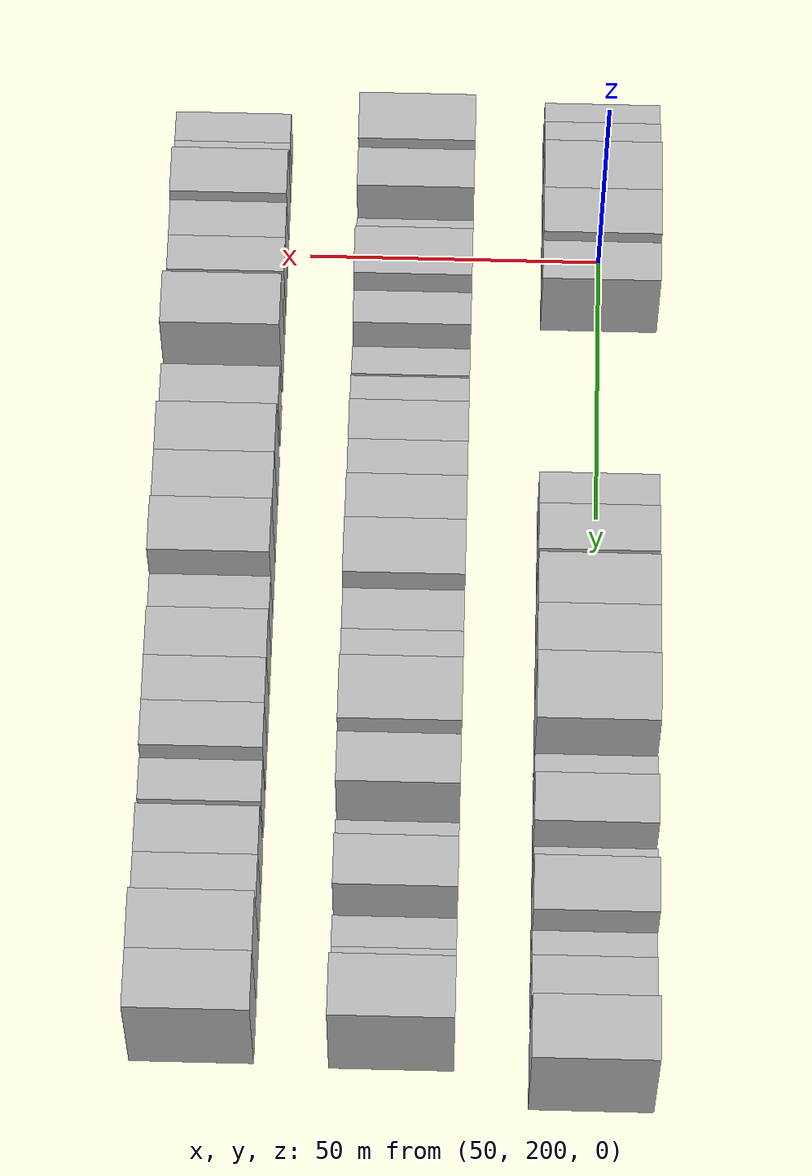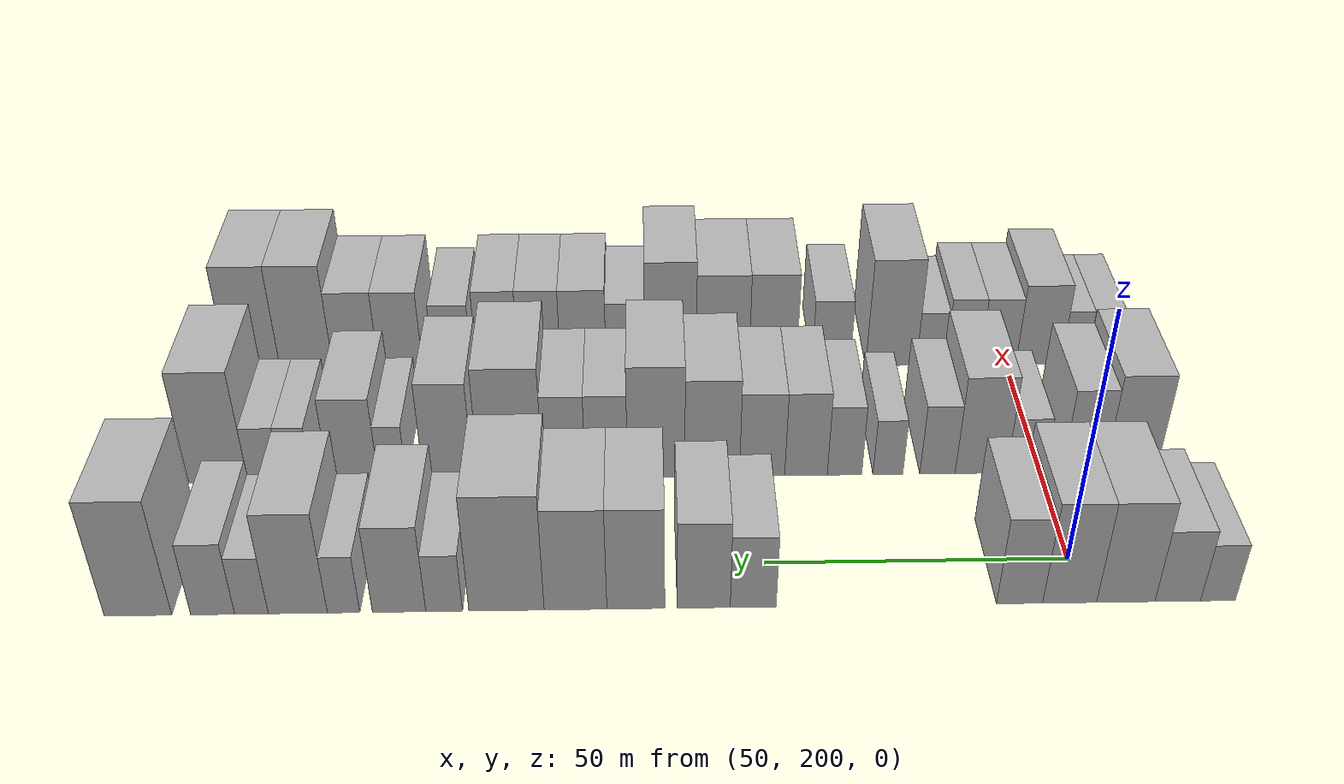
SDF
<sdf version="1.6">
 <world name="default">
  <model name="building_58">
   <static>1</static>
   <pose>50.0000 177.9480 0 0.000000 0.000000 0.000000</pose>
   <link name="link">
    <pose>0 0 6.00 0 0 0</pose>
    <collision name="collision"><geometry><box><size>20.0000 5.5900 12.0000</size></box></geometry></collision>
    <visual name="visual">
     <cast_shadows>0</cast_shadows>
     <geometry><box><size>20.0000 5.5900 12.0000</size></box></geometry>
     <material>
      <script>
       <uri>model://HANNAS_wall/materials/scripts</uri>
       <uri>model://HANNAS_wall/materials/textures</uri>
       <name>vrc/HANNAS_wall</name>
      </script>
     </material>
    </visual>
   </link>
  </model>
  <model name="building_59">
   <static>1</static>
   <pose>50.0000 184.4182 0 0.000000 0.000000 0.000000</pose>
   <link name="link">
    <pose>0 0 7.50 0 0 0</pose>
    <collision name="collision"><geometry><box><size>20.0000 7.3504 15.0000</size></box></geometry></collision>
    <visual name="visual">
     <cast_shadows>0</cast_shadows>
     <geometry><box><size>20.0000 7.3504 15.0000</size></box></geometry>
     <material>
      <script>
       <uri>model://HANNAS_wall/materials/scripts</uri>
       <uri>model://HANNAS_wall/materials/textures</uri>
       <name>vrc/HANNAS_wall</name>
      </script>
     </material>
    </visual>
   </link>
  </model>
  <model name="building_60">
   <static>1</static>
   <pose>50.0000 192.7913 0 0.000000 0.000000 0.000000</pose>
   <link name="link">
    <pose>0 0 10.50 0 0 0</pose>
    <collision name="collision"><geometry><box><size>20.0000 9.3958 21.0000</size></box></geometry></collision>
    <visual name="visual">
     <cast_shadows>0</cast_shadows>
     <geometry><box><size>20.0000 9.3958 21.0000</size></box></geometry>
     <material>
      <script>
       <uri>model://HANNAS_wall/materials/scripts</uri>
       <uri>model://HANNAS_wall/materials/textures</uri>
       <name>vrc/HANNAS_wall</name>
      </script>
     </material>
    </visual>
   </link>
  </model>
  <model name="building_61">
   <static>1</static>
   <pose>50.0000 201.8314 0 0.000000 0.000000 0.000000</pose>
   <link name="link">
    <pose>0 0 10.50 0 0 0</pose>
    <collision name="collision"><geometry><box><size>20.0000 8.6845 21.0000</size></box></geometry></collision>
    <visual name="visual">
     <cast_shadows>0</cast_shadows>
     <geometry><box><size>20.0000 8.6845 21.0000</size></box></geometry>
     <material>
      <script>
       <uri>model://HANNAS_wall/materials/scripts</uri>
       <uri>model://HANNAS_wall/materials/textures</uri>
       <name>vrc/HANNAS_wall</name>
      </script>
     </material>
    </visual>
   </link>
  </model>
  <model name="building_62">
   <static>1</static>
   <pose>50.0000 209.8744 0 0.000000 0.000000 0.000000</pose>
   <link name="link">
    <pose>0 0 9.00 0 0 0</pose>
    <collision name="collision"><geometry><box><size>20.0000 7.4015 18.0000</size></box></geometry></collision>
    <visual name="visual">
     <cast_shadows>0</cast_shadows>
     <geometry><box><size>20.0000 7.4015 18.0000</size></box></geometry>
     <material>
      <script>
       <uri>model://HANNAS_wall/materials/scripts</uri>
       <uri>model://HANNAS_wall/materials/textures</uri>
       <name>vrc/HANNAS_wall</name>
      </script>
     </material>
    </visual>
   </link>
  </model>
  <model name="building_63">
   <static>1</static>
   <pose>50.0000 252.5464 0 0.000000 0.000000 0.000000</pose>
   <link name="link">
    <pose>0 0 7.50 0 0 0</pose>
    <collision name="collision"><geometry><box><size>20.0000 7.3142 15.0000</size></box></geometry></collision>
    <visual name="visual">
     <cast_shadows>0</cast_shadows>
     <geometry><box><size>20.0000 7.3142 15.0000</size></box></geometry>
     <material>
      <script>
       <uri>model://HANNAS_wall/materials/scripts</uri>
       <uri>model://HANNAS_wall/materials/textures</uri>
       <name>vrc/HANNAS_wall</name>
      </script>
     </material>
    </visual>
   </link>
  </model>
  <model name="building_64">
   <static>1</static>
   <pose>50.0000 260.4299 0 0.000000 0.000000 0.000000</pose>
   <link name="link">
    <pose>0 0 9.00 0 0 0</pose>
    <collision name="collision"><geometry><box><size>20.0000 8.4530 18.0000</size></box></geometry></collision>
    <visual name="visual">
     <cast_shadows>0</cast_shadows>
     <geometry><box><size>20.0000 8.4530 18.0000</size></box></geometry>
     <material>
      <script>
       <uri>model://HANNAS_wall/materials/scripts</uri>
       <uri>model://HANNAS_wall/materials/textures</uri>
       <name>vrc/HANNAS_wall</name>
      </script>
     </material>
    </visual>
   </link>
  </model>
  <model name="building_65">
   <static>1</static>
   <pose>50.0000 271.2693 0 0.000000 0.000000 0.000000</pose>
   <link name="link">
    <pose>0 0 10.50 0 0 0</pose>
    <collision name="collision"><geometry><box><size>20.0000 9.2257 21.0000</size></box></geometry></collision>
    <visual name="visual">
     <cast_shadows>0</cast_shadows>
     <geometry><box><size>20.0000 9.2257 21.0000</size></box></geometry>
     <material>
      <script>
       <uri>model://HANNAS_wall/materials/scripts</uri>
       <uri>model://HANNAS_wall/materials/textures</uri>
       <name>vrc/HANNAS_wall</name>
      </script>
     </material>
    </visual>
   </link>
  </model>
  <model name="building_66">
   <static>1</static>
   <pose>50.0000 280.8760 0 0.000000 0.000000 0.000000</pose>
   <link name="link">
    <pose>0 0 10.50 0 0 0</pose>
    <collision name="collision"><geometry><box><size>20.0000 9.9877 21.0000</size></box></geometry></collision>
    <visual name="visual">
     <cast_shadows>0</cast_shadows>
     <geometry><box><size>20.0000 9.9877 21.0000</size></box></geometry>
     <material>
      <script>
       <uri>model://HANNAS_wall/materials/scripts</uri>
       <uri>model://HANNAS_wall/materials/textures</uri>
       <name>vrc/HANNAS_wall</name>
      </script>
     </material>
    </visual>
   </link>
  </model>
  <model name="building_67">
   <static>1</static>
   <pose>50.0000 291.8581 0 0.000000 0.000000 0.000000</pose>
   <link name="link">
    <pose>0 0 12.00 0 0 0</pose>
    <collision name="collision"><geometry><box><size>20.0000 11.9766 24.0000</size></box></geometry></collision>
    <visual name="visual">
     <cast_shadows>0</cast_shadows>
     <geometry><box><size>20.0000 11.9766 24.0000</size></box></geometry>
     <material>
      <script>
       <uri>model://HANNAS_wall/materials/scripts</uri>
       <uri>model://HANNAS_wall/materials/textures</uri>
       <name>vrc/HANNAS_wall</name>
      </script>
     </material>
    </visual>
   </link>
  </model>
  <model name="building_68">
   <static>1</static>
   <pose>50.0000 301.7600 0 0.000000 0.000000 0.000000</pose>
   <link name="link">
    <pose>0 0 6.00 0 0 0</pose>
    <collision name="collision"><geometry><box><size>20.0000 5.8272 12.0000</size></box></geometry></collision>
    <visual name="visual">
     <cast_shadows>0</cast_shadows>
     <geometry><box><size>20.0000 5.8272 12.0000</size></box></geometry>
     <material>
      <script>
       <uri>model://HANNAS_wall/materials/scripts</uri>
       <uri>model://HANNAS_wall/materials/textures</uri>
       <name>vrc/HANNAS_wall</name>
      </script>
     </material>
    </visual>
   </link>
  </model>
  <model name="building_69">
   <static>1</static>
   <pose>50.0000 308.9085 0 0.000000 0.000000 0.000000</pose>
   <link name="link">
    <pose>0 0 9.00 0 0 0</pose>
    <collision name="collision"><geometry><box><size>20.0000 8.4697 18.0000</size></box></geometry></collision>
    <visual name="visual">
     <cast_shadows>0</cast_shadows>
     <geometry><box><size>20.0000 8.4697 18.0000</size></box></geometry>
     <material>
      <script>
       <uri>model://HANNAS_wall/materials/scripts</uri>
       <uri>model://HANNAS_wall/materials/textures</uri>
       <name>vrc/HANNAS_wall</name>
      </script>
     </material>
    </visual>
   </link>
  </model>
  <model name="building_70">
   <static>1</static>
   <pose>50.0000 317.7163 0 0.000000 0.000000 0.000000</pose>
   <link name="link">
    <pose>0 0 6.00 0 0 0</pose>
    <collision name="collision"><geometry><box><size>20.0000 5.1459 12.0000</size></box></geometry></collision>
    <visual name="visual">
     <cast_shadows>0</cast_shadows>
     <geometry><box><size>20.0000 5.1459 12.0000</size></box></geometry>
     <material>
      <script>
       <uri>model://HANNAS_wall/materials/scripts</uri>
       <uri>model://HANNAS_wall/materials/textures</uri>
       <name>vrc/HANNAS_wall</name>
      </script>
     </material>
    </visual>
   </link>
  </model>
  <model name="building_71">
   <static>1</static>
   <pose>50.0000 324.9714 0 0.000000 0.000000 0.000000</pose>
   <link name="link">
    <pose>0 0 10.50 0 0 0</pose>
    <collision name="collision"><geometry><box><size>20.0000 9.3643 21.0000</size></box></geometry></collision>
    <visual name="visual">
     <cast_shadows>0</cast_shadows>
     <geometry><box><size>20.0000 9.3643 21.0000</size></box></geometry>
     <material>
      <script>
       <uri>model://HANNAS_wall/materials/scripts</uri>
       <uri>model://HANNAS_wall/materials/textures</uri>
       <name>vrc/HANNAS_wall</name>
      </script>
     </material>
    </visual>
   </link>
  </model>
  <model name="building_72">
   <static>1</static>
   <pose>50.0000 332.3150 0 0.000000 0.000000 0.000000</pose>
   <link name="link">
    <pose>0 0 6.00 0 0 0</pose>
    <collision name="collision"><geometry><box><size>20.0000 5.3229 12.0000</size></box></geometry></collision>
    <visual name="visual">
     <cast_shadows>0</cast_shadows>
     <geometry><box><size>20.0000 5.3229 12.0000</size></box></geometry>
     <material>
      <script>
       <uri>model://HANNAS_wall/materials/scripts</uri>
       <uri>model://HANNAS_wall/materials/textures</uri>
       <name>vrc/HANNAS_wall</name>
      </script>
     </material>
    </visual>
   </link>
  </model>
  <model name="building_73">
   <static>1</static>
   <pose>50.0000 338.4484 0 0.000000 0.000000 0.000000</pose>
   <link name="link">
    <pose>0 0 7.50 0 0 0</pose>
    <collision name="collision"><geometry><box><size>20.0000 6.9439 15.0000</size></box></geometry></collision>
    <visual name="visual">
     <cast_shadows>0</cast_shadows>
     <geometry><box><size>20.0000 6.9439 15.0000</size></box></geometry>
     <material>
      <script>
       <uri>model://HANNAS_wall/materials/scripts</uri>
       <uri>model://HANNAS_wall/materials/textures</uri>
       <name>vrc/HANNAS_wall</name>
      </script>
     </material>
    </visual>
   </link>
  </model>
  <model name="building_74">
   <static>1</static>
   <pose>50.0000 350.2436 0 0.000000 0.000000 0.000000</pose>
   <link name="link">
    <pose>0 0 12.00 0 0 0</pose>
    <collision name="collision"><geometry><box><size>20.0000 10.6464 24.0000</size></box></geometry></collision>
    <visual name="visual">
     <cast_shadows>0</cast_shadows>
     <geometry><box><size>20.0000 10.6464 24.0000</size></box></geometry>
     <material>
      <script>
       <uri>model://HANNAS_wall/materials/scripts</uri>
       <uri>model://HANNAS_wall/materials/textures</uri>
       <name>vrc/HANNAS_wall</name>
      </script>
     </material>
    </visual>
   </link>
  </model>
  <model name="building_130">
   <static>1</static>
   <pose>82.0000 183.9687 0 0.000000 0.000000 0.000000</pose>
   <link name="link">
    <pose>0 0 10.50 0 0 0</pose>
    <collision name="collision"><geometry><box><size>20.0000 9.1994 21.0000</size></box></geometry></collision>
    <visual name="visual">
     <cast_shadows>0</cast_shadows>
     <geometry><box><size>20.0000 9.1994 21.0000</size></box></geometry>
     <material>
      <script>
       <uri>model://HANNAS_wall/materials/scripts</uri>
       <uri>model://HANNAS_wall/materials/textures</uri>
       <name>vrc/HANNAS_wall</name>
      </script>
     </material>
    </visual>
   </link>
  </model>
  <model name="building_131">
   <static>1</static>
   <pose>82.0000 192.3453 0 0.000000 0.000000 0.000000</pose>
   <link name="link">
    <pose>0 0 9.00 0 0 0</pose>
    <collision name="collision"><geometry><box><size>20.0000 7.5538 18.0000</size></box></geometry></collision>
    <visual name="visual">
     <cast_shadows>0</cast_shadows>
     <geometry><box><size>20.0000 7.5538 18.0000</size></box></geometry>
     <material>
      <script>
       <uri>model://HANNAS_wall/materials/scripts</uri>
       <uri>model://HANNAS_wall/materials/textures</uri>
       <name>vrc/HANNAS_wall</name>
      </script>
     </material>
    </visual>
   </link>
  </model>
  <model name="building_132">
   <static>1</static>
   <pose>82.0000 201.5419 0 0.000000 0.000000 0.000000</pose>
   <link name="link">
    <pose>0 0 6.00 0 0 0</pose>
    <collision name="collision"><geometry><box><size>20.0000 4.8394 12.0000</size></box></geometry></collision>
    <visual name="visual">
     <cast_shadows>0</cast_shadows>
     <geometry><box><size>20.0000 4.8394 12.0000</size></box></geometry>
     <material>
      <script>
       <uri>model://HANNAS_wall/materials/scripts</uri>
       <uri>model://HANNAS_wall/materials/textures</uri>
       <name>vrc/HANNAS_wall</name>
      </script>
     </material>
    </visual>
   </link>
  </model>
  <model name="building_133">
   <static>1</static>
   <pose>82.0000 210.4893 0 0.000000 0.000000 0.000000</pose>
   <link name="link">
    <pose>0 0 10.50 0 0 0</pose>
    <collision name="collision"><geometry><box><size>20.0000 9.0553 21.0000</size></box></geometry></collision>
    <visual name="visual">
     <cast_shadows>0</cast_shadows>
     <geometry><box><size>20.0000 9.0553 21.0000</size></box></geometry>
     <material>
      <script>
       <uri>model://HANNAS_wall/materials/scripts</uri>
       <uri>model://HANNAS_wall/materials/textures</uri>
       <name>vrc/HANNAS_wall</name>
      </script>
     </material>
    </visual>
   </link>
  </model>
  <model name="building_134">
   <static>1</static>
   <pose>82.0000 218.1330 0 0.000000 0.000000 0.000000</pose>
   <link name="link">
    <pose>0 0 7.50 0 0 0</pose>
    <collision name="collision"><geometry><box><size>20.0000 6.2321 15.0000</size></box></geometry></collision>
    <visual name="visual">
     <cast_shadows>0</cast_shadows>
     <geometry><box><size>20.0000 6.2321 15.0000</size></box></geometry>
     <material>
      <script>
       <uri>model://HANNAS_wall/materials/scripts</uri>
       <uri>model://HANNAS_wall/materials/textures</uri>
       <name>vrc/HANNAS_wall</name>
      </script>
     </material>
    </visual>
   </link>
  </model>
  <model name="building_135">
   <static>1</static>
   <pose>82.0000 226.8763 0 0.000000 0.000000 0.000000</pose>
   <link name="link">
    <pose>0 0 6.00 0 0 0</pose>
    <collision name="collision"><geometry><box><size>20.0000 5.2545 12.0000</size></box></geometry></collision>
    <visual name="visual">
     <cast_shadows>0</cast_shadows>
     <geometry><box><size>20.0000 5.2545 12.0000</size></box></geometry>
     <material>
      <script>
       <uri>model://HANNAS_wall/materials/scripts</uri>
       <uri>model://HANNAS_wall/materials/textures</uri>
       <name>vrc/HANNAS_wall</name>
      </script>
     </material>
    </visual>
   </link>
  </model>
  <model name="building_136">
   <static>1</static>
   <pose>82.0000 234.5362 0 0.000000 0.000000 0.000000</pose>
   <link name="link">
    <pose>0 0 7.50 0 0 0</pose>
    <collision name="collision"><geometry><box><size>20.0000 6.0653 15.0000</size></box></geometry></collision>
    <visual name="visual">
     <cast_shadows>0</cast_shadows>
     <geometry><box><size>20.0000 6.0653 15.0000</size></box></geometry>
     <material>
      <script>
       <uri>model://HANNAS_wall/materials/scripts</uri>
       <uri>model://HANNAS_wall/materials/textures</uri>
       <name>vrc/HANNAS_wall</name>
      </script>
     </material>
    </visual>
   </link>
  </model>
  <model name="building_137">
   <static>1</static>
   <pose>82.0000 241.3215 0 0.000000 0.000000 0.000000</pose>
   <link name="link">
    <pose>0 0 9.00 0 0 0</pose>
    <collision name="collision"><geometry><box><size>20.0000 7.5052 18.0000</size></box></geometry></collision>
    <visual name="visual">
     <cast_shadows>0</cast_shadows>
     <geometry><box><size>20.0000 7.5052 18.0000</size></box></geometry>
     <material>
      <script>
       <uri>model://HANNAS_wall/materials/scripts</uri>
       <uri>model://HANNAS_wall/materials/textures</uri>
       <name>vrc/HANNAS_wall</name>
      </script>
     </material>
    </visual>
   </link>
  </model>
  <model name="building_138">
   <static>1</static>
   <pose>82.0000 249.0492 0 0.000000 0.000000 0.000000</pose>
   <link name="link">
    <pose>0 0 9.00 0 0 0</pose>
    <collision name="collision"><geometry><box><size>20.0000 7.9503 18.0000</size></box></geometry></collision>
    <visual name="visual">
     <cast_shadows>0</cast_shadows>
     <geometry><box><size>20.0000 7.9503 18.0000</size></box></geometry>
     <material>
      <script>
       <uri>model://HANNAS_wall/materials/scripts</uri>
       <uri>model://HANNAS_wall/materials/textures</uri>
       <name>vrc/HANNAS_wall</name>
      </script>
     </material>
    </visual>
   </link>
  </model>
  <model name="building_139">
   <static>1</static>
   <pose>82.0000 257.8323 0 0.000000 0.000000 0.000000</pose>
   <link name="link">
    <pose>0 0 10.50 0 0 0</pose>
    <collision name="collision"><geometry><box><size>20.0000 9.6157 21.0000</size></box></geometry></collision>
    <visual name="visual">
     <cast_shadows>0</cast_shadows>
     <geometry><box><size>20.0000 9.6157 21.0000</size></box></geometry>
     <material>
      <script>
       <uri>model://HANNAS_wall/materials/scripts</uri>
       <uri>model://HANNAS_wall/materials/textures</uri>
       <name>vrc/HANNAS_wall</name>
      </script>
     </material>
    </visual>
   </link>
  </model>
  <model name="building_140">
   <static>1</static>
   <pose>82.0000 267.6524 0 0.000000 0.000000 0.000000</pose>
   <link name="link">
    <pose>0 0 12.00 0 0 0</pose>
    <collision name="collision"><geometry><box><size>20.0000 10.0244 24.0000</size></box></geometry></collision>
    <visual name="visual">
     <cast_shadows>0</cast_shadows>
     <geometry><box><size>20.0000 10.0244 24.0000</size></box></geometry>
     <material>
      <script>
       <uri>model://HANNAS_wall/materials/scripts</uri>
       <uri>model://HANNAS_wall/materials/textures</uri>
       <name>vrc/HANNAS_wall</name>
      </script>
     </material>
    </visual>
   </link>
  </model>
  <model name="building_141">
   <static>1</static>
   <pose>82.0000 276.3582 0 0.000000 0.000000 0.000000</pose>
   <link name="link">
    <pose>0 0 9.00 0 0 0</pose>
    <collision name="collision"><geometry><box><size>20.0000 7.3873 18.0000</size></box></geometry></collision>
    <visual name="visual">
     <cast_shadows>0</cast_shadows>
     <geometry><box><size>20.0000 7.3873 18.0000</size></box></geometry>
     <material>
      <script>
       <uri>model://HANNAS_wall/materials/scripts</uri>
       <uri>model://HANNAS_wall/materials/textures</uri>
       <name>vrc/HANNAS_wall</name>
      </script>
     </material>
    </visual>
   </link>
  </model>
  <model name="building_142">
   <static>1</static>
   <pose>82.0000 283.7828 0 0.000000 0.000000 0.000000</pose>
   <link name="link">
    <pose>0 0 9.00 0 0 0</pose>
    <collision name="collision"><geometry><box><size>20.0000 7.4619 18.0000</size></box></geometry></collision>
    <visual name="visual">
     <cast_shadows>0</cast_shadows>
     <geometry><box><size>20.0000 7.4619 18.0000</size></box></geometry>
     <material>
      <script>
       <uri>model://HANNAS_wall/materials/scripts</uri>
       <uri>model://HANNAS_wall/materials/textures</uri>
       <name>vrc/HANNAS_wall</name>
      </script>
     </material>
    </visual>
   </link>
  </model>
  <model name="building_143">
   <static>1</static>
   <pose>82.0000 293.1233 0 0.000000 0.000000 0.000000</pose>
   <link name="link">
    <pose>0 0 12.00 0 0 0</pose>
    <collision name="collision"><geometry><box><size>20.0000 11.2192 24.0000</size></box></geometry></collision>
    <visual name="visual">
     <cast_shadows>0</cast_shadows>
     <geometry><box><size>20.0000 11.2192 24.0000</size></box></geometry>
     <material>
      <script>
       <uri>model://HANNAS_wall/materials/scripts</uri>
       <uri>model://HANNAS_wall/materials/textures</uri>
       <name>vrc/HANNAS_wall</name>
      </script>
     </material>
    </visual>
   </link>
  </model>
  <model name="building_144">
   <static>1</static>
   <pose>82.0000 304.0524 0 0.000000 0.000000 0.000000</pose>
   <link name="link">
    <pose>0 0 10.50 0 0 0</pose>
    <collision name="collision"><geometry><box><size>20.0000 8.6389 21.0000</size></box></geometry></collision>
    <visual name="visual">
     <cast_shadows>0</cast_shadows>
     <geometry><box><size>20.0000 8.6389 21.0000</size></box></geometry>
     <material>
      <script>
       <uri>model://HANNAS_wall/materials/scripts</uri>
       <uri>model://HANNAS_wall/materials/textures</uri>
       <name>vrc/HANNAS_wall</name>
      </script>
     </material>
    </visual>
   </link>
  </model>
  <model name="building_145">
   <static>1</static>
   <pose>82.0000 313.8079 0 0.000000 0.000000 0.000000</pose>
   <link name="link">
    <pose>0 0 6.00 0 0 0</pose>
    <collision name="collision"><geometry><box><size>20.0000 4.8722 12.0000</size></box></geometry></collision>
    <visual name="visual">
     <cast_shadows>0</cast_shadows>
     <geometry><box><size>20.0000 4.8722 12.0000</size></box></geometry>
     <material>
      <script>
       <uri>model://HANNAS_wall/materials/scripts</uri>
       <uri>model://HANNAS_wall/materials/textures</uri>
       <name>vrc/HANNAS_wall</name>
      </script>
     </material>
    </visual>
   </link>
  </model>
  <model name="building_146">
   <static>1</static>
   <pose>82.0000 320.5871 0 0.000000 0.000000 0.000000</pose>
   <link name="link">
    <pose>0 0 9.00 0 0 0</pose>
    <collision name="collision"><geometry><box><size>20.0000 8.6860 18.0000</size></box></geometry></collision>
    <visual name="visual">
     <cast_shadows>0</cast_shadows>
     <geometry><box><size>20.0000 8.6860 18.0000</size></box></geometry>
     <material>
      <script>
       <uri>model://HANNAS_wall/materials/scripts</uri>
       <uri>model://HANNAS_wall/materials/textures</uri>
       <name>vrc/HANNAS_wall</name>
      </script>
     </material>
    </visual>
   </link>
  </model>
  <model name="building_147">
   <static>1</static>
   <pose>82.0000 330.5917 0 0.000000 0.000000 0.000000</pose>
   <link name="link">
    <pose>0 0 6.00 0 0 0</pose>
    <collision name="collision"><geometry><box><size>20.0000 5.3232 12.0000</size></box></geometry></collision>
    <visual name="visual">
     <cast_shadows>0</cast_shadows>
     <geometry><box><size>20.0000 5.3232 12.0000</size></box></geometry>
     <material>
      <script>
       <uri>model://HANNAS_wall/materials/scripts</uri>
       <uri>model://HANNAS_wall/materials/textures</uri>
       <name>vrc/HANNAS_wall</name>
      </script>
     </material>
    </visual>
   </link>
  </model>
  <model name="building_148">
   <static>1</static>
   <pose>82.0000 336.1449 0 0.000000 0.000000 0.000000</pose>
   <link name="link">
    <pose>0 0 6.00 0 0 0</pose>
    <collision name="collision"><geometry><box><size>20.0000 5.7832 12.0000</size></box></geometry></collision>
    <visual name="visual">
     <cast_shadows>0</cast_shadows>
     <geometry><box><size>20.0000 5.7832 12.0000</size></box></geometry>
     <material>
      <script>
       <uri>model://HANNAS_wall/materials/scripts</uri>
       <uri>model://HANNAS_wall/materials/textures</uri>
       <name>vrc/HANNAS_wall</name>
      </script>
     </material>
    </visual>
   </link>
  </model>
  <model name="building_149">
   <static>1</static>
   <pose>82.0000 344.2205 0 0.000000 0.000000 0.000000</pose>
   <link name="link">
    <pose>0 0 12.00 0 0 0</pose>
    <collision name="collision"><geometry><box><size>20.0000 10.3680 24.0000</size></box></geometry></collision>
    <visual name="visual">
     <cast_shadows>0</cast_shadows>
     <geometry><box><size>20.0000 10.3680 24.0000</size></box></geometry>
     <material>
      <script>
       <uri>model://HANNAS_wall/materials/scripts</uri>
       <uri>model://HANNAS_wall/materials/textures</uri>
       <name>vrc/HANNAS_wall</name>
      </script>
     </material>
    </visual>
   </link>
  </model>
  <model name="building_211">
   <static>1</static>
   <pose>114.0000 181.4841 0 0.000000 0.000000 0.000000</pose>
   <link name="link">
    <pose>0 0 6.00 0 0 0</pose>
    <collision name="collision"><geometry><box><size>20.0000 5.8599 12.0000</size></box></geometry></collision>
    <visual name="visual">
     <cast_shadows>0</cast_shadows>
     <geometry><box><size>20.0000 5.8599 12.0000</size></box></geometry>
     <material>
      <script>
       <uri>model://HANNAS_wall/materials/scripts</uri>
       <uri>model://HANNAS_wall/materials/textures</uri>
       <name>vrc/HANNAS_wall</name>
      </script>
     </material>
    </visual>
   </link>
  </model>
  <model name="building_212">
   <static>1</static>
   <pose>114.0000 186.8794 0 0.000000 0.000000 0.000000</pose>
   <link name="link">
    <pose>0 0 6.00 0 0 0</pose>
    <collision name="collision"><geometry><box><size>20.0000 4.9308 12.0000</size></box></geometry></collision>
    <visual name="visual">
     <cast_shadows>0</cast_shadows>
     <geometry><box><size>20.0000 4.9308 12.0000</size></box></geometry>
     <material>
      <script>
       <uri>model://HANNAS_wall/materials/scripts</uri>
       <uri>model://HANNAS_wall/materials/textures</uri>
       <name>vrc/HANNAS_wall</name>
      </script>
     </material>
    </visual>
   </link>
  </model>
  <model name="building_213">
   <static>1</static>
   <pose>114.0000 193.7246 0 0.000000 0.000000 0.000000</pose>
   <link name="link">
    <pose>0 0 9.00 0 0 0</pose>
    <collision name="collision"><geometry><box><size>20.0000 8.7597 18.0000</size></box></geometry></collision>
    <visual name="visual">
     <cast_shadows>0</cast_shadows>
     <geometry><box><size>20.0000 8.7597 18.0000</size></box></geometry>
     <material>
      <script>
       <uri>model://HANNAS_wall/materials/scripts</uri>
       <uri>model://HANNAS_wall/materials/textures</uri>
       <name>vrc/HANNAS_wall</name>
      </script>
     </material>
    </visual>
   </link>
  </model>
  <model name="building_214">
   <static>1</static>
   <pose>114.0000 201.5719 0 0.000000 0.000000 0.000000</pose>
   <link name="link">
    <pose>0 0 7.50 0 0 0</pose>
    <collision name="collision"><geometry><box><size>20.0000 6.9348 15.0000</size></box></geometry></collision>
    <visual name="visual">
     <cast_shadows>0</cast_shadows>
     <geometry><box><size>20.0000 6.9348 15.0000</size></box></geometry>
     <material>
      <script>
       <uri>model://HANNAS_wall/materials/scripts</uri>
       <uri>model://HANNAS_wall/materials/textures</uri>
       <name>vrc/HANNAS_wall</name>
      </script>
     </material>
    </visual>
   </link>
  </model>
  <model name="building_215">
   <static>1</static>
   <pose>114.0000 208.3736 0 0.000000 0.000000 0.000000</pose>
   <link name="link">
    <pose>0 0 7.50 0 0 0</pose>
    <collision name="collision"><geometry><box><size>20.0000 6.6688 15.0000</size></box></geometry></collision>
    <visual name="visual">
     <cast_shadows>0</cast_shadows>
     <geometry><box><size>20.0000 6.6688 15.0000</size></box></geometry>
     <material>
      <script>
       <uri>model://HANNAS_wall/materials/scripts</uri>
       <uri>model://HANNAS_wall/materials/textures</uri>
       <name>vrc/HANNAS_wall</name>
      </script>
     </material>
    </visual>
   </link>
  </model>
  <model name="building_216">
   <static>1</static>
   <pose>114.0000 214.5146 0 0.000000 0.000000 0.000000</pose>
   <link name="link">
    <pose>0 0 6.00 0 0 0</pose>
    <collision name="collision"><geometry><box><size>20.0000 5.6131 12.0000</size></box></geometry></collision>
    <visual name="visual">
     <cast_shadows>0</cast_shadows>
     <geometry><box><size>20.0000 5.6131 12.0000</size></box></geometry>
     <material>
      <script>
       <uri>model://HANNAS_wall/materials/scripts</uri>
       <uri>model://HANNAS_wall/materials/textures</uri>
       <name>vrc/HANNAS_wall</name>
      </script>
     </material>
    </visual>
   </link>
  </model>
  <model name="building_217">
   <static>1</static>
   <pose>114.0000 222.1887 0 0.000000 0.000000 0.000000</pose>
   <link name="link">
    <pose>0 0 12.00 0 0 0</pose>
    <collision name="collision"><geometry><box><size>20.0000 9.7352 24.0000</size></box></geometry></collision>
    <visual name="visual">
     <cast_shadows>0</cast_shadows>
     <geometry><box><size>20.0000 9.7352 24.0000</size></box></geometry>
     <material>
      <script>
       <uri>model://HANNAS_wall/materials/scripts</uri>
       <uri>model://HANNAS_wall/materials/textures</uri>
       <name>vrc/HANNAS_wall</name>
      </script>
     </material>
    </visual>
   </link>
  </model>
  <model name="building_218">
   <static>1</static>
   <pose>114.0000 233.7347 0 0.000000 0.000000 0.000000</pose>
   <link name="link">
    <pose>0 0 7.50 0 0 0</pose>
    <collision name="collision"><geometry><box><size>20.0000 7.3567 15.0000</size></box></geometry></collision>
    <visual name="visual">
     <cast_shadows>0</cast_shadows>
     <geometry><box><size>20.0000 7.3567 15.0000</size></box></geometry>
     <material>
      <script>
       <uri>model://HANNAS_wall/materials/scripts</uri>
       <uri>model://HANNAS_wall/materials/textures</uri>
       <name>vrc/HANNAS_wall</name>
      </script>
     </material>
    </visual>
   </link>
  </model>
  <model name="building_219">
   <static>1</static>
   <pose>114.0000 244.9532 0 0.000000 0.000000 0.000000</pose>
   <link name="link">
    <pose>0 0 10.50 0 0 0</pose>
    <collision name="collision"><geometry><box><size>20.0000 9.0802 21.0000</size></box></geometry></collision>
    <visual name="visual">
     <cast_shadows>0</cast_shadows>
     <geometry><box><size>20.0000 9.0802 21.0000</size></box></geometry>
     <material>
      <script>
       <uri>model://HANNAS_wall/materials/scripts</uri>
       <uri>model://HANNAS_wall/materials/textures</uri>
       <name>vrc/HANNAS_wall</name>
      </script>
     </material>
    </visual>
   </link>
  </model>
  <model name="building_220">
   <static>1</static>
   <pose>114.0000 254.5612 0 0.000000 0.000000 0.000000</pose>
   <link name="link">
    <pose>0 0 10.50 0 0 0</pose>
    <collision name="collision"><geometry><box><size>20.0000 10.1359 21.0000</size></box></geometry></collision>
    <visual name="visual">
     <cast_shadows>0</cast_shadows>
     <geometry><box><size>20.0000 10.1359 21.0000</size></box></geometry>
     <material>
      <script>
       <uri>model://HANNAS_wall/materials/scripts</uri>
       <uri>model://HANNAS_wall/materials/textures</uri>
       <name>vrc/HANNAS_wall</name>
      </script>
     </material>
    </visual>
   </link>
  </model>
  <model name="building_221">
   <static>1</static>
   <pose>114.0000 264.5336 0 0.000000 0.000000 0.000000</pose>
   <link name="link">
    <pose>0 0 12.00 0 0 0</pose>
    <collision name="collision"><geometry><box><size>20.0000 9.8090 24.0000</size></box></geometry></collision>
    <visual name="visual">
     <cast_shadows>0</cast_shadows>
     <geometry><box><size>20.0000 9.8090 24.0000</size></box></geometry>
     <material>
      <script>
       <uri>model://HANNAS_wall/materials/scripts</uri>
       <uri>model://HANNAS_wall/materials/textures</uri>
       <name>vrc/HANNAS_wall</name>
      </script>
     </material>
    </visual>
   </link>
  </model>
  <model name="building_222">
   <static>1</static>
   <pose>114.0000 273.1507 0 0.000000 0.000000 0.000000</pose>
   <link name="link">
    <pose>0 0 7.50 0 0 0</pose>
    <collision name="collision"><geometry><box><size>20.0000 7.4253 15.0000</size></box></geometry></collision>
    <visual name="visual">
     <cast_shadows>0</cast_shadows>
     <geometry><box><size>20.0000 7.4253 15.0000</size></box></geometry>
     <material>
      <script>
       <uri>model://HANNAS_wall/materials/scripts</uri>
       <uri>model://HANNAS_wall/materials/textures</uri>
       <name>vrc/HANNAS_wall</name>
      </script>
     </material>
    </visual>
   </link>
  </model>
  <model name="building_223">
   <static>1</static>
   <pose>114.0000 281.2313 0 0.000000 0.000000 0.000000</pose>
   <link name="link">
    <pose>0 0 9.00 0 0 0</pose>
    <collision name="collision"><geometry><box><size>20.0000 8.7358 18.0000</size></box></geometry></collision>
    <visual name="visual">
     <cast_shadows>0</cast_shadows>
     <geometry><box><size>20.0000 8.7358 18.0000</size></box></geometry>
     <material>
      <script>
       <uri>model://HANNAS_wall/materials/scripts</uri>
       <uri>model://HANNAS_wall/materials/textures</uri>
       <name>vrc/HANNAS_wall</name>
      </script>
     </material>
    </visual>
   </link>
  </model>
  <model name="building_224">
   <static>1</static>
   <pose>114.0000 289.6168 0 0.000000 0.000000 0.000000</pose>
   <link name="link">
    <pose>0 0 9.00 0 0 0</pose>
    <collision name="collision"><geometry><box><size>20.0000 8.0353 18.0000</size></box></geometry></collision>
    <visual name="visual">
     <cast_shadows>0</cast_shadows>
     <geometry><box><size>20.0000 8.0353 18.0000</size></box></geometry>
     <material>
      <script>
       <uri>model://HANNAS_wall/materials/scripts</uri>
       <uri>model://HANNAS_wall/materials/textures</uri>
       <name>vrc/HANNAS_wall</name>
      </script>
     </material>
    </visual>
   </link>
  </model>
  <model name="building_225">
   <static>1</static>
   <pose>114.0000 297.6129 0 0.000000 0.000000 0.000000</pose>
   <link name="link">
    <pose>0 0 9.00 0 0 0</pose>
    <collision name="collision"><geometry><box><size>20.0000 7.9568 18.0000</size></box></geometry></collision>
    <visual name="visual">
     <cast_shadows>0</cast_shadows>
     <geometry><box><size>20.0000 7.9568 18.0000</size></box></geometry>
     <material>
      <script>
       <uri>model://HANNAS_wall/materials/scripts</uri>
       <uri>model://HANNAS_wall/materials/textures</uri>
       <name>vrc/HANNAS_wall</name>
      </script>
     </material>
    </visual>
   </link>
  </model>
  <model name="building_226">
   <static>1</static>
   <pose>114.0000 306.2240 0 0.000000 0.000000 0.000000</pose>
   <link name="link">
    <pose>0 0 7.50 0 0 0</pose>
    <collision name="collision"><geometry><box><size>20.0000 7.2654 15.0000</size></box></geometry></collision>
    <visual name="visual">
     <cast_shadows>0</cast_shadows>
     <geometry><box><size>20.0000 7.2654 15.0000</size></box></geometry>
     <material>
      <script>
       <uri>model://HANNAS_wall/materials/scripts</uri>
       <uri>model://HANNAS_wall/materials/textures</uri>
       <name>vrc/HANNAS_wall</name>
      </script>
     </material>
    </visual>
   </link>
  </model>
  <model name="building_227">
   <static>1</static>
   <pose>114.0000 316.0570 0 0.000000 0.000000 0.000000</pose>
   <link name="link">
    <pose>0 0 9.00 0 0 0</pose>
    <collision name="collision"><geometry><box><size>20.0000 8.4004 18.0000</size></box></geometry></collision>
    <visual name="visual">
     <cast_shadows>0</cast_shadows>
     <geometry><box><size>20.0000 8.4004 18.0000</size></box></geometry>
     <material>
      <script>
       <uri>model://HANNAS_wall/materials/scripts</uri>
       <uri>model://HANNAS_wall/materials/textures</uri>
       <name>vrc/HANNAS_wall</name>
      </script>
     </material>
    </visual>
   </link>
  </model>
  <model name="building_228">
   <static>1</static>
   <pose>114.0000 324.5913 0 0.000000 0.000000 0.000000</pose>
   <link name="link">
    <pose>0 0 9.00 0 0 0</pose>
    <collision name="collision"><geometry><box><size>20.0000 8.6682 18.0000</size></box></geometry></collision>
    <visual name="visual">
     <cast_shadows>0</cast_shadows>
     <geometry><box><size>20.0000 8.6682 18.0000</size></box></geometry>
     <material>
      <script>
       <uri>model://HANNAS_wall/materials/scripts</uri>
       <uri>model://HANNAS_wall/materials/textures</uri>
       <name>vrc/HANNAS_wall</name>
      </script>
     </material>
    </visual>
   </link>
  </model>
  <model name="building_229">
   <static>1</static>
   <pose>114.0000 333.9727 0 0.000000 0.000000 0.000000</pose>
   <link name="link">
    <pose>0 0 12.00 0 0 0</pose>
    <collision name="collision"><geometry><box><size>20.0000 10.0946 24.0000</size></box></geometry></collision>
    <visual name="visual">
     <cast_shadows>0</cast_shadows>
     <geometry><box><size>20.0000 10.0946 24.0000</size></box></geometry>
     <material>
      <script>
       <uri>model://HANNAS_wall/materials/scripts</uri>
       <uri>model://HANNAS_wall/materials/textures</uri>
       <name>vrc/HANNAS_wall</name>
      </script>
     </material>
    </visual>
   </link>
  </model>
  <model name="building_230">
   <static>1</static>
   <pose>114.0000 343.9885 0 0.000000 0.000000 0.000000</pose>
   <link name="link">
    <pose>0 0 12.00 0 0 0</pose>
    <collision name="collision"><geometry><box><size>20.0000 9.9369 24.0000</size></box></geometry></collision>
    <visual name="visual">
     <cast_shadows>0</cast_shadows>
     <geometry><box><size>20.0000 9.9369 24.0000</size></box></geometry>
     <material>
      <script>
       <uri>model://HANNAS_wall/materials/scripts</uri>
       <uri>model://HANNAS_wall/materials/textures</uri>
       <name>vrc/HANNAS_wall</name>
      </script>
     </material>
    </visual>
   </link>
  </model>
 </world>
</sdf>
